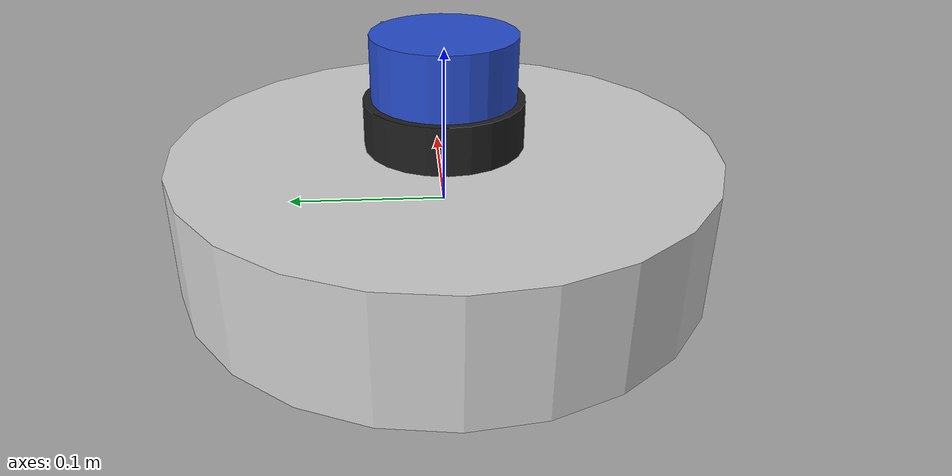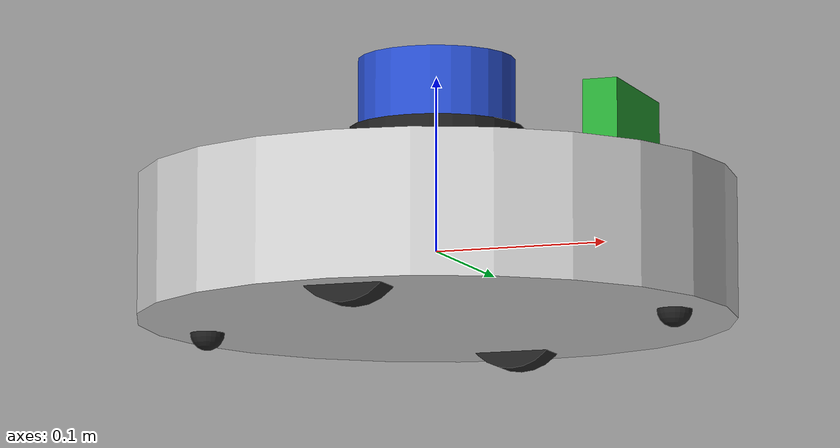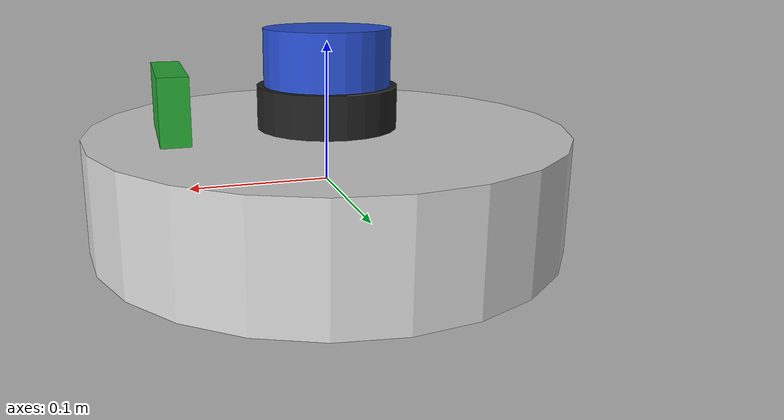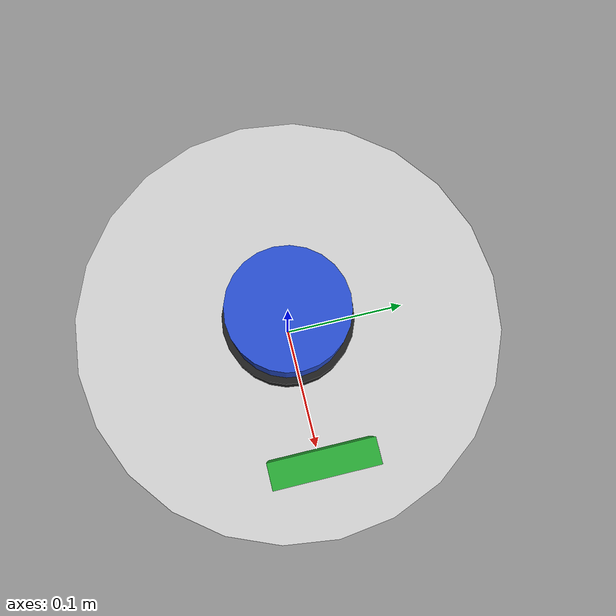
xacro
<?xml version="1.0"?>
<robot xmlns:xacro="http://www.ros.org/wiki/xacro" name="iRobot">

  <!-- MODELS -->
  <xacro:include filename="$(find ncrbt_descrptn)/model/materials.urdf"/>
  <xacro:include filename="$(find ncrbt_descrptn)/model/axis.urdf.xacro"/>
  <xacro:include filename="$(find ncrbt_descrptn)/model/wheel.urdf.xacro"/>
  <xacro:include filename="$(find ncrbt_descrptn)/gazebo/iRobot.gazebo.xacro"/>
  <xacro:include filename="$(find ncrbt_descrptn)/model/hokuyo.urdf.xacro"/>
  <xacro:include filename="$(find ncrbt_descrptn)/model/camera.urdf.xacro"/>

  <xacro:property name="pi" value="3.1415926535897931"/>
  <xacro:property name="wheel_mass" value="0.5"/>
  <xacro:property name="sphere_mass" value="0.3"/>

  <link name="base_link">
    <inertial>
        <origin xyz="0 0 0" rpy="0 0 0"/>
        <mass value="0"/>
        <inertia ixx="0.0" ixy="0.0" ixz="0.0" iyy="0.0" iyz="0.0" izz="0.0"/>
    </inertial>
    </link>
    <joint name="base_joint" type="fixed">
        <origin xyz="0 0 0" rpy="0 0 0" />
        <parent link="base_link"/>
        <child link="chassis"/>
    </joint>
    <link name="chassis">
        <inertial>
            <origin xyz="0 0 0" rpy="0 0 0"/>
            <mass value="10"/>
             <inertia ixx="${0.0802}" ixy="0.0" ixz="0.0" iyy="${0.08025}" iyz="0.0" izz="${0.1445}"/>
        </inertial>
        <visual>
            <origin xyz="0 0 0" rpy="0 0 0"/>
            <geometry>
                <cylinder length="0.08" radius="0.17"/>
            </geometry>
            <material name="iRobot/LightGrey"/>
        </visual>
        <collision>
            <origin xyz="0 0 0" rpy="0 0 0"/>
            <geometry>
                <cylinder length="0.08" radius="0.17"/>
            </geometry>
        </collision>
    </link>

    <xacro:model_axis name="left_axis"
                      parent="chassis">
    <origin xyz="0 0.14 -0.02" rpy="0 0 0"/>
    </xacro:model_axis>

   <xacro:model_wheel name="left_wheel"
                      parent="left_axis"
                      radius="0.03"
                      width="0.02"
                      mass="${wheel_mass}">
    <origin xyz="0 0 0" rpy="0 0 0"/>
    </xacro:model_wheel>

    <xacro:model_axis name="right_axis"
                      parent="chassis">
    <origin xyz="0 -0.14 -0.02" rpy="0 0 0"/>
    </xacro:model_axis>

    <xacro:model_wheel name="right_wheel"
                      parent="right_axis"
                      radius="0.03"
                      width="0.02"
                      mass="${wheel_mass}">
    <origin xyz="0 0 0" rpy="0 0 0"/>
    </xacro:model_wheel>

    <joint name="sphere_joint1" type="revolute">
        <origin xyz="0.14 0 -0.04" rpy="0 0 0"/>
        <axis xyz="0 0 1"/>
        <limit lower="0" upper="0" effort="100" velocity="100"/>
        <parent link="chassis"/>
        <child link="sphere1"/>
    </joint>
    <link name="sphere1">
        <inertial>
            <origin xyz="0 0 0" rpy="0 0 0"/>
            <mass value="${sphere_mass}"/>
            <inertia ixx="${2/5*sphere_mass*0.01**2}" ixy="0.0" ixz="0.0" iyy="${2/5*sphere_mass*0.01**2}" iyz="0.0" izz="${2/5*sphere_mass*0.01**2}"/>
        </inertial>
        <visual>
            <origin xyz="0 0 0" rpy="0 0 0"/>
            <geometry>
                <sphere radius="0.01"/>
            </geometry>
            <material name="iRobot/Black"/>
        </visual>
        <collision>
            <origin xyz="0 0 0" rpy="0 0 0"/>
            <geometry>
                <sphere radius="0.01"/>
            </geometry>
        </collision>
    </link>

    <joint name="sphere_joint2" type="revolute">
        <origin xyz="-0.14 0 -0.04" rpy="0 0 0"/>
        <axis xyz="0 0 1"/>
        <limit lower="0" upper="0" effort="100" velocity="100"/>
        <parent link="chassis"/>
        <child link="sphere2"/>
    </joint>
    <link name="sphere2">
        <inertial>
            <origin xyz="0 0 0" rpy="0 0 0"/>
            <mass value="${sphere_mass}"/>
            <inertia ixx="${2/5*sphere_mass*0.01**2}" ixy="0.0" ixz="0.0" iyy="${2/5*sphere_mass*0.01**2}" iyz="0.0" izz="${2/5*sphere_mass*0.01**2}"/>
        </inertial>
        <visual>
            <origin xyz="0 0 0" rpy="0 0 0"/>
            <geometry>
                <sphere radius="0.01"/>
            </geometry>
            <material name="iRobot/Black"/>
        </visual>
        <collision>
            <origin xyz="0 0 0" rpy="0 0 0"/>
            <geometry>
                <sphere radius="0.01"/>
            </geometry>
        </collision>
    </link>
   <joint name="support_joint" type="fixed">
       <origin xyz="0 0 0.055" rpy = "0 0 0"/>
       <parent link="chassis"/>
       <child link="support_cylinder"/>
    </joint>
    <link name="support_cylinder">
      <collision>
       <origin xyz="0 0 0" rpy="0 0 0"/>
	 <geometry>
	   <cylinder radius="0.05" length="0.03"/>
	 </geometry>
      </collision>
      <visual>
	<origin xyz="0 0 0" rpy="0 0 0"/>
	 <geometry>
             <cylinder radius="0.05" length="0.03"/>
	 </geometry>
	<material name="iRobot/Black"/>
      </visual>
 	<inertial>
	   <mass value="0.3"/>
	   <origin xyz="0 0 0" rpy="0 0 0"/>
           <inertia ixx="0.00021" ixy="0" ixz="0" iyy="0.00021" iyz="0" izz="0.000375"/>
	</inertial>
     </link>
    <!-- Laser link and plugin -->
   <xacro:hokuyo_laser xyz="0 0 ${0.04 + 0.03 + 0.02}"
                  rpy="0 0 0"
                  parent="base_link">
    </xacro:hokuyo_laser>

    <!--Imu link and plugin-->

    <!--Camera link and plugin-->
    <xacro:camera_sensor xyz="0.11 0 ${0.04 + 0.02}"
                  rpy="0 0 0"
                  parent="chassis">
    </xacro:camera_sensor>

    <xacro:iRobot_gazebo />
</robot>

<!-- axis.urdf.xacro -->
<robot xmlns:xacro="http://www.ros.org/wiki/xacro" name="axis">

    <xacro:include filename="$(find ncrbt_descrptn)/gazebo/axis.gazebo.xacro"/>

    <xacro:property name="pi" value="3.1415926535897931"/>
    <xacro:property name="small_mass" value="0.001"/>

    <xacro:macro name="model_axis" params="name parent *origin">
        <joint name="${name}_base_joint" type="fixed">
            <insert_block name="origin"/>
            <parent link="${parent}"/>
            <child link="${name}"/>
        </joint>
        <link name="${name}">
            <inertial>
                <origin xyz="0 0 0" rpy="${-pi/2} 0 0"/>
                <mass value="${small_mass}"/>
                <inertia ixx="${1/12*small_mass*3*0.0025**2+1/12*small_mass*0.02**2}" ixy="0.0" ixz="0.0" iyy="${1/12*small_mass*3*0.0025**2+1/12*small_mass*0.02**2}" iyz="0.0"
                                izz="${1/12*small_mass*0.0025**2}"/>
            </inertial>
        <visual>
            <origin xyz="0 0 0" rpy="${-pi/2} 0 0"/>
            <geometry>
                <cylinder length="0.02" radius="0.0025"/>
            </geometry>
            <material name="iRobot/MediumGray"/>
        </visual>
        <collision>
            <origin xyz="0 0 0" rpy="${-pi/2} 0 0"/>
            <geometry>
                <cylinder length="0.02" radius="0.0025"/>
            </geometry>
            </collision>
        </link>

        <xacro:axis_gazebo name="${name}"/>

    </xacro:macro>
</robot>

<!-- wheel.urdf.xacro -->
<robot xmlns:xacro="http://www.ros.org/wiki/xacro" name="wheel">

<xacro:include filename="$(find ncrbt_descrptn)/gazebo/wheel.gazebo.xacro"/>

<xacro:property name="pi" value="3.1415926535897931"/>

<xacro:macro name="model_wheel" params="name parent radius width mass *origin">
    <joint name="${name}_rot_joint" type="continuous">
        <insert_block name="origin"/>
        <axis xyz="0 1 0"/>
        <limit effort="100" velocity="100"/>
        <joint_properties damping="0.0" friction="0.0"/>
        <parent link="${parent}"/>
        <child link="${name}_link"/>
    </joint>
    <link name="${name}_link">
        <inertial>
            <origin xyz="0 0.01 0" rpy="${-pi/2} 0 0"/>
            <mass value="${mass}"/>
            <inertia ixx="${1/12*mass*3*radius**2+1/12*mass*width**2}" ixy="0.0" ixz="0.0" iyy="${1/12*mass*3*radius**2+1/12*mass*width**2}" iyz="0.0" izz="${1/12*mass*radius**2}"/>
        </inertial>
        <visual>
            <origin xyz="0 0 0" rpy="${-pi/2} 0 0"/>
            <geometry>
                <cylinder length="${width}" radius="${radius}"/>
            </geometry>
            <material name="iRobot/Black"/>
        </visual>
        <collision>
            <origin xyz="0 0 0" rpy="${-pi/2} 0 0"/>
            <geometry>
                <cylinder length="${width}" radius="${radius}"/>
            </geometry>
        </collision>
    </link>

    <xacro:wheel_gazebo name="${name}"/>

</xacro:macro>
</robot>

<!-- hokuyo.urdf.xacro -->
<robot xmlns:xacro="http://www.ros.org/wiki/xacro" name="hokuyo">

<xacro:macro name="hokuyo_laser" params="xyz rpy parent">
    <joint name="hokuyo_laser_joint" type="fixed">
        <axis xyz="0 0 1" />
        <origin xyz="${xyz}" rpy="${rpy}"/>
        <parent link="${parent}"/>
        <child link="hokuyo_laser_link"/>
    </joint>

    <link name="hokuyo_laser_link">
        <collision>
            <origin xyz="0 0 0" rpy="0 0 0"/>
            <geometry>
                <cylinder length="0.04" radius="0.045"/>
            </geometry>
        </collision>
        <visual>
            <origin xyz="0 0 0" rpy="0 0 0"/>
            <geometry>
                <cylinder length="0.04" radius="0.045"/>
            </geometry>
            <material name="iRobot/LightBlue"/>
        </visual>
        <inertial>
            <mass value="1e-5" />
            <origin xyz="0 0 0" rpy="0 0 0"/>
            <inertia ixx="1e-6" ixy="0" ixz="0" iyy="1e-6" iyz="0" izz="1e-6" />
        </inertial>
    </link>

    <gazebo reference="hokuyo_laser_link">
        <gravity>true</gravity>
        <sensor type="ray" name="head_hokuyo_sensor">
            <pose>0 0 0 0 0 0</pose>
            <visualize>true</visualize>
            <update_rate>40</update_rate>
            <ray>
                <scan>
                    <horizontal>
                        <samples>360</samples>
                        <resolution>1</resolution>
                        <min_angle>-3.14159</min_angle>
                        <max_angle>3.14159</max_angle>
                    </horizontal>
                </scan>
                <range>
                    <min>0.2</min>
                    <max>40</max>
                    <resolution>0.025</resolution>
                </range>
                <noise>
                    <type>gaussian</type>
                    <mean>0.0</mean>
                    <stddev>0.0</stddev>
                </noise>
            </ray>
            <plugin name="gazebo_ros_head_hokuyo_controller" filename="libgazebo_ros_laser.so">
                <robotNamespace></robotNamespace>
                <topicName>/iRobot/laser_scan</topicName>
                <frameName>/hokuyo_laser_link</frameName>
            </plugin>
        </sensor>
    </gazebo>

</xacro:macro>

</robot>

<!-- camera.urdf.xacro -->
<robot xmlns:xacro="http://www.ros.org/wiki/xacro" name="camera">

    <xacro:property name="pi" value="3.1415926535897931"/>

    <xacro:macro name="camera_sensor" params="xyz rpy parent">
        <joint name="camera_sensor_joint" type="fixed">
            <axis xyz="0 1 0" />
            <origin xyz="${xyz}" rpy="${rpy}"/>
            <parent link="${parent}"/>
            <child link="camera_link"/>
        </joint>

<!--below stuff added-->
       <link name="camera_link">
            <collision>
                <origin xyz="0 0 0" rpy="0 0 0"/>
                <geometry>
                    <box size="0.02 0.08 0.05"/>
                </geometry>
            </collision>
            <visual>
                <origin xyz="0 0 0" rpy="0 0 0"/>
                <geometry>
                    <box size="0.02 0.08 0.05"/>
                </geometry>
                <material name="iRobot/Green"/>
            </visual>
            <inertial>
                <mass value="0.0001" />
                <origin xyz="0 0 0" rpy="0 0 ${pi}"/>
                <inertia ixx="0.0000001" ixy="0" ixz="0" iyy="0.0000001" iyz="0" izz="0.0000001" />
            </inertial>
        </link>

     <joint name="camera_depth_optical_joint" type="fixed">
        <origin xyz="0 0 0" rpy="-1.57 0 -1.57" />
        <parent link="camera_link" />
        <child link="camera_depth_frame" />
    </joint>

    <link name="camera_depth_frame">
        <inertial>
            <mass value="0.001" />
            <origin xyz="0 0 0" />
            <inertia ixx="0.0001" ixy="0.0" ixz="0.0"
                     iyy="0.0001" iyz="0.0"
                     izz="0.0001" />
        </inertial>
    </link>

    <!-- Camera Joint -->

<!--above stuff added-->

        <gazebo reference="camera_link">
            <sensor type="depth" name="depth_camera">
                <update_rate>20.0</update_rate>
                <camera>
                    <horizontal_fov>1.047198</horizontal_fov>
                    <image>
                        <width>640</width>
                        <height>480</height>
                        <format>R8G8B8</format>
                    </image>
                    <clip>
                        <near>0.05</near>
                        <far>20</far>
                    </clip>
                </camera>
                <plugin name="camera_controller" filename="libgazebo_ros_openni_kinect.so">
                    <alwaysOn>true</alwaysOn>
		    <baseline>=0.2</baseline>
                    <updateRate>10.0</updateRate>
                    <cameraName>/camera_link</cameraName>
                    <imageTopicName>/iRobot/image_raw</imageTopicName>
                    <cameraInfoTopicName>/iRobot/camera_info</cameraInfoTopicName>
		    <depthImageTopicName>/iRobot/depth/image_raw</depthImageTopicName>
		    <pointCloudTopicName>/iRobot/depth/points</pointCloudTopicName>
		    <depthImageCameraInfoTopicName>/iRobot/depth/camera_info</depthImageCameraInfoTopicName>
                    <frameName>/camera_depth_frame</frameName>
	            <pointCloudCutoff>0.4</pointCloudCutoff>
		    <focalLength>0</focalLength>
                    <hackBaseline>0</hackBaseline>
                    <distortionK1>0.0</distortionK1>
                    <distortionK2>0.0</distortionK2>
                    <distortionK3>0.0</distortionK3>
                    <distortionT1>0.0</distortionT1>
                    <distortionT2>0.0</distortionT2>
		    <CxPrime>0</CxPrime>
		    <Cx>0</Cx>
                    <Cy>0</Cy>
                </plugin>
            </sensor>
    </gazebo>

    </xacro:macro>

</robot>
